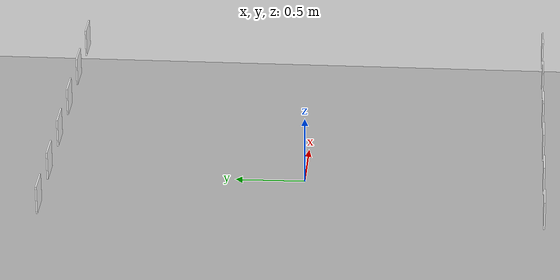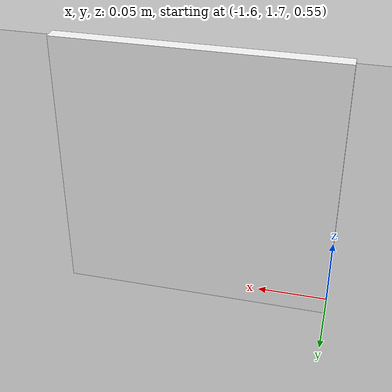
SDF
<sdf version="1.4">
 <world name="aisle">
  <physics name="1ms" type="ignored">
   <max_step_size>0.001</max_step_size>
   <real_time_factor>1.0</real_time_factor>
  </physics>
  <plugin filename="ignition-gazebo-physics-system" name="gz::sim::systems::Physics"/>
  <plugin filename="ignition-gazebo-user-commands-system" name="gz::sim::systems::UserCommands"/>
  <plugin filename="ignition-gazebo-scene-broadcaster-system" name="gz::sim::systems::SceneBroadcaster"/>
  <plugin filename="ignition-gazebo-sensors-system" name="gz::sim::systems::Sensors">
   <render_engine>ogre2</render_engine>
  </plugin>
  <scene><ambient>0.65 0.65 0.65 1</ambient><background>0.78 0.82 0.88 1</background></scene>
  <light type="directional" name="sun">
   <pose>0 0 10 0 0 0</pose>
   <diffuse>1.0 1.0 1.0 1</diffuse>
   <specular>0.35 0.35 0.35 1</specular>
   <attenuation>
    <range>1000</range>
    <constant>0.9</constant>
    <linear>0.01</linear>
    <quadratic>0.001</quadratic>
   </attenuation>
   <direction>-0.45 0.2 -0.87</direction>
  </light>
  <model name="ground_plane">
   <static>true</static>
   <link name="link">
    <collision name="collision">
     <geometry><plane><normal>0 0 1</normal><size>100 100</size></plane></geometry>
    </collision>
    <visual name="visual">
     <cast_shadows>false</cast_shadows>
     <geometry><plane><normal>0 0 1</normal><size>100 100</size></plane></geometry>
     <material>
      <ambient>0.72 0.72 0.72 1</ambient>
      <diffuse>0.72 0.72 0.72 1</diffuse>
      <specular>0.08 0.08 0.08 1</specular>
     </material>
    </visual>
   </link>
  </model>
  <model name="bin_0_tag">
   <static>true</static>
   <pose>-1.5 -1.6875 0.63 0 0 3.1415</pose>
   <link name="link">
    <visual name="visual">
     <geometry><box><size>0.2 0.01 0.2</size></box></geometry>
     <material><ambient>1 1 1 1</ambient><diffuse>1 1 1 1</diffuse></material>
    </visual>
   </link>
  </model>
  <model name="bin_1_tag">
   <static>true</static>
   <pose>-1.0 -1.6875 0.63 0 0 3.1415</pose>
   <link name="link">
    <visual name="visual">
     <geometry><box><size>0.2 0.01 0.2</size></box></geometry>
     <material><ambient>1 1 1 1</ambient><diffuse>1 1 1 1</diffuse></material>
    </visual>
   </link>
  </model>
  <model name="bin_2_tag">
   <static>true</static>
   <pose>-0.5 -1.6875 0.63 0 0 3.1415</pose>
   <link name="link">
    <visual name="visual">
     <geometry><box><size>0.2 0.01 0.2</size></box></geometry>
     <material><ambient>1 1 1 1</ambient><diffuse>1 1 1 1</diffuse></material>
    </visual>
   </link>
  </model>
  <model name="bin_3_tag">
   <static>true</static>
   <pose>0.0 -1.6875 0.63 0 0 3.1415</pose>
   <link name="link">
    <visual name="visual">
     <geometry><box><size>0.2 0.01 0.2</size></box></geometry>
     <material><ambient>1 1 1 1</ambient><diffuse>1 1 1 1</diffuse></material>
    </visual>
   </link>
  </model>
  <model name="bin_4_tag">
   <static>true</static>
   <pose>0.5 -1.6875 0.63 0 0 3.1415</pose>
   <link name="link">
    <visual name="visual">
     <geometry><box><size>0.2 0.01 0.2</size></box></geometry>
     <material><ambient>1 1 1 1</ambient><diffuse>1 1 1 1</diffuse></material>
    </visual>
   </link>
  </model>
  <model name="bin_5_tag">
   <static>true</static>
   <pose>1.0 -1.6875 0.63 0 0 3.1415</pose>
   <link name="link">
    <visual name="visual">
     <geometry><box><size>0.2 0.01 0.2</size></box></geometry>
     <material><ambient>1 1 1 1</ambient><diffuse>1 1 1 1</diffuse></material>
    </visual>
   </link>
  </model>
  <model name="bin_6_tag">
   <static>true</static>
   <pose>-1.5 1.6875 0.63 0 0 0</pose>
   <link name="link">
    <visual name="visual">
     <geometry><box><size>0.2 0.01 0.2</size></box></geometry>
     <material><ambient>1 1 1 1</ambient><diffuse>1 1 1 1</diffuse></material>
    </visual>
   </link>
  </model>
  <model name="bin_7_tag">
   <static>true</static>
   <pose>-1.0 1.6875 0.63 0 0 0</pose>
   <link name="link">
    <visual name="visual">
     <geometry><box><size>0.2 0.01 0.2</size></box></geometry>
     <material><ambient>1 1 1 1</ambient><diffuse>1 1 1 1</diffuse></material>
    </visual>
   </link>
  </model>
  <model name="bin_8_tag">
   <static>true</static>
   <pose>-0.5 1.6875 0.63 0 0 0</pose>
   <link name="link">
    <visual name="visual">
     <geometry><box><size>0.2 0.01 0.2</size></box></geometry>
     <material><ambient>1 1 1 1</ambient><diffuse>1 1 1 1</diffuse></material>
    </visual>
   </link>
  </model>
  <model name="bin_9_tag">
   <static>true</static>
   <pose>0.0 1.6875 0.63 0 0 0</pose>
   <link name="link">
    <visual name="visual">
     <geometry><box><size>0.2 0.01 0.2</size></box></geometry>
     <material><ambient>1 1 1 1</ambient><diffuse>1 1 1 1</diffuse></material>
    </visual>
   </link>
  </model>
  <model name="bin_10_tag">
   <static>true</static>
   <pose>0.5 1.6875 0.63 0 0 0</pose>
   <link name="link">
    <visual name="visual">
     <geometry><box><size>0.2 0.01 0.2</size></box></geometry>
     <material><ambient>1 1 1 1</ambient><diffuse>1 1 1 1</diffuse></material>
    </visual>
   </link>
  </model>
  <model name="bin_11_tag">
   <static>true</static>
   <pose>1.0 1.6875 0.63 0 0 0</pose>
   <link name="link">
    <visual name="visual">
     <geometry><box><size>0.2 0.01 0.2</size></box></geometry>
     <material><ambient>1 1 1 1</ambient><diffuse>1 1 1 1</diffuse></material>
    </visual>
   </link>
  </model>
 </world>
</sdf>
